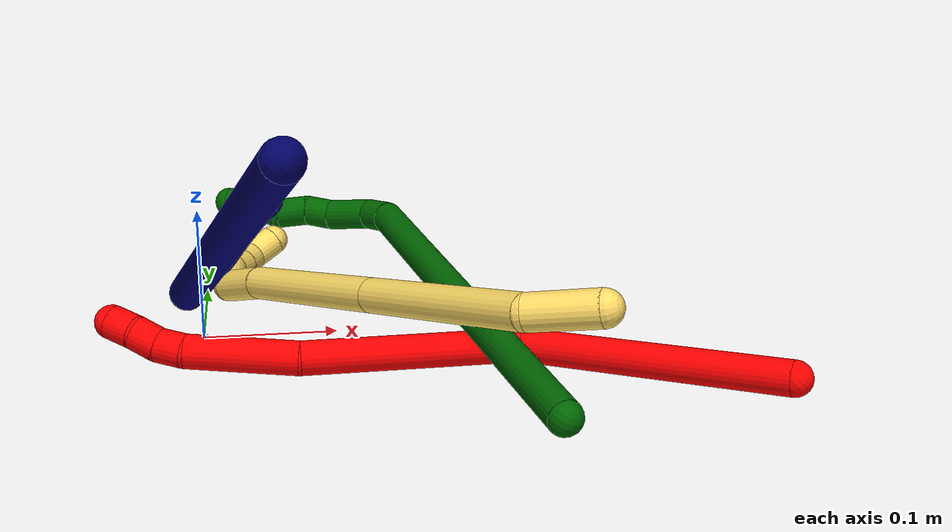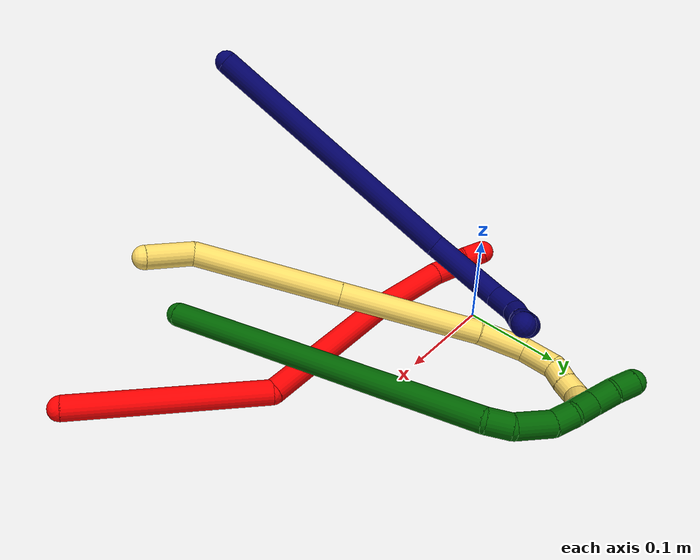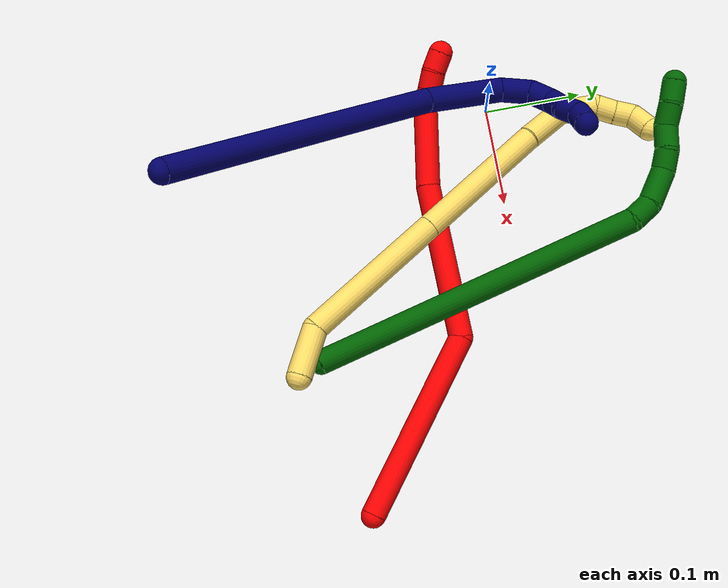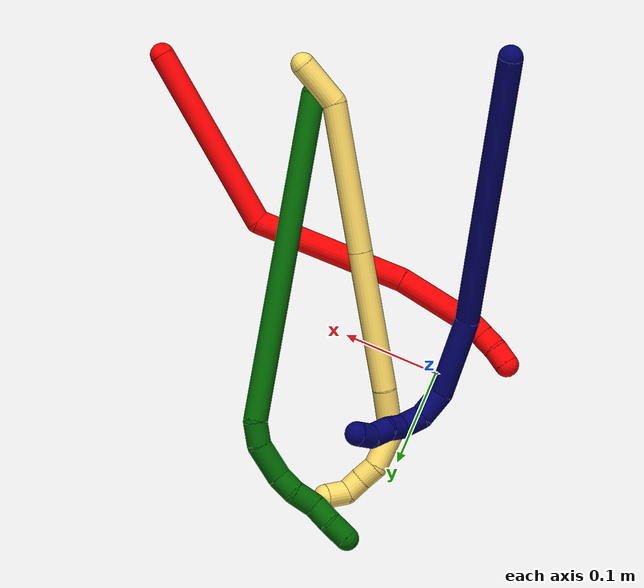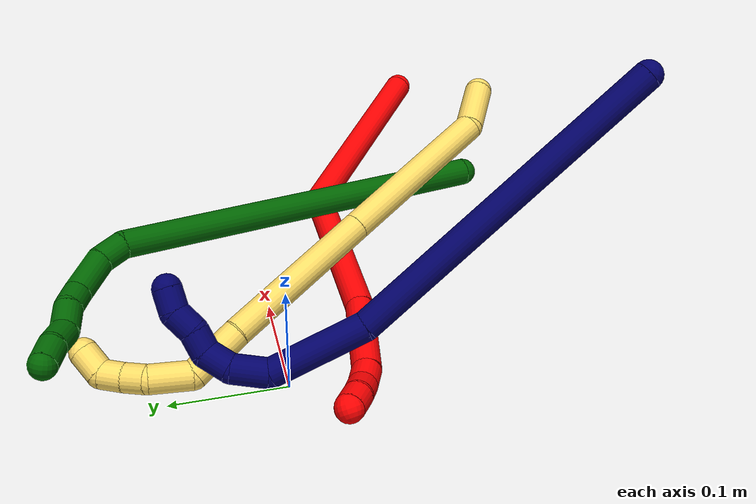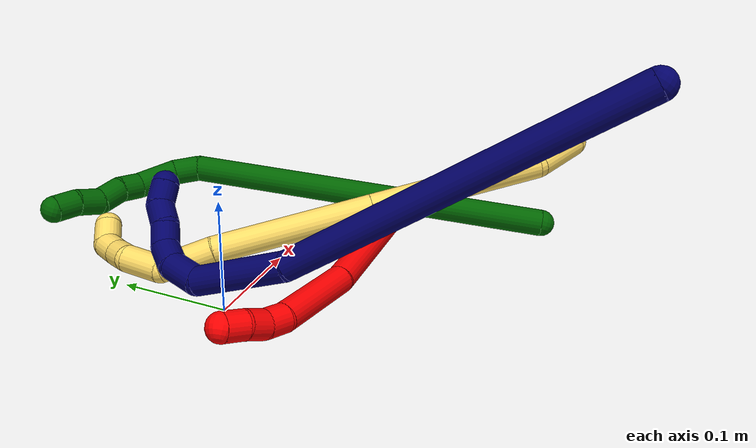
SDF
<sdf version="1.7">
 <world name="default">
  <model name="2">
   <static>0</static>
   <link name="2">
    <collision name="collision-cylinder-e_1_1_4">
     <pose>-0.052133 0.066903 -0.050646 -2.21877 -0.555923 1.04202</pose>
     <geometry><cylinder><radius>0.0125</radius><length>0.197574</length></cylinder></geometry>
     <surface>
      <friction><ode><mu>1.16</mu><mu2>1.16</mu2><slip1>0</slip1><slip2>0</slip2></ode></friction>
      <contact><ode><kp>1e+06</kp><kd>1</kd><max_vel>0</max_vel><min_depth>0.001</min_depth></ode></contact>
     </surface>
    </collision>
    <visual name="visual-cylinder-e_1_1_4">
     <pose>-0.052133 0.066903 -0.050646 -2.21877 -0.555923 1.04202</pose>
     <geometry><cylinder><radius>0.0125</radius><length>0.197574</length></cylinder></geometry>
     <material><ambient>1 0 0 1</ambient></material>
    </visual>
    <collision name="collision-cylinder-e_2_4_5">
     <pose>-0.16142 0.139701 -0.157232 -3.03659 -0.793383 2.89199</pose>
     <geometry><cylinder><radius>0.0125</radius><length>0.160382</length></cylinder></geometry>
     <surface>
      <friction><ode><mu>1.16</mu><mu2>1.16</mu2><slip1>0</slip1><slip2>0</slip2></ode></friction>
      <contact><ode><kp>1e+06</kp><kd>1</kd><max_vel>0</max_vel><min_depth>0.001</min_depth></ode></contact>
     </surface>
    </collision>
    <visual name="visual-cylinder-e_2_4_5">
     <pose>-0.16142 0.139701 -0.157232 -3.03659 -0.793383 2.89199</pose>
     <geometry><cylinder><radius>0.0125</radius><length>0.160382</length></cylinder></geometry>
     <material><ambient>1 0 0 1</ambient></material>
    </visual>
    <collision name="collision-cylinder-e_3_5_6">
     <pose>-0.249213 0.155335 -0.23849 -2.77443 -0.846122 2.35934</pose>
     <geometry><cylinder><radius>0.0125</radius><length>0.081845</length></cylinder></geometry>
     <surface>
      <friction><ode><mu>1.16</mu><mu2>1.16</mu2><slip1>0</slip1><slip2>0</slip2></ode></friction>
      <contact><ode><kp>1e+06</kp><kd>1</kd><max_vel>0</max_vel><min_depth>0.001</min_depth></ode></contact>
     </surface>
    </collision>
    <visual name="visual-cylinder-e_3_5_6">
     <pose>-0.249213 0.155335 -0.23849 -2.77443 -0.846122 2.35934</pose>
     <geometry><cylinder><radius>0.0125</radius><length>0.081845</length></cylinder></geometry>
     <material><ambient>1 0 0 1</ambient></material>
    </visual>
    <collision name="collision-cylinder-e_4_6_7">
     <pose>-0.287447 0.169544 -0.268703 -2.40126 -0.85312 1.72812</pose>
     <geometry><cylinder><radius>0.0125</radius><length>0.020161</length></cylinder></geometry>
     <surface>
      <friction><ode><mu>1.16</mu><mu2>1.16</mu2><slip1>0</slip1><slip2>0</slip2></ode></friction>
      <contact><ode><kp>1e+06</kp><kd>1</kd><max_vel>0</max_vel><min_depth>0.001</min_depth></ode></contact>
     </surface>
    </collision>
    <visual name="visual-cylinder-e_4_6_7">
     <pose>-0.287447 0.169544 -0.268703 -2.40126 -0.85312 1.72812</pose>
     <geometry><cylinder><radius>0.0125</radius><length>0.020161</length></cylinder></geometry>
     <material><ambient>1 0 0 1</ambient></material>
    </visual>
    <collision name="collision-cylinder-e_5_7_8">
     <pose>-0.303895 0.17798 -0.27608 -2.1304 -1.08482 1.6557</pose>
     <geometry><cylinder><radius>0.0125</radius><length>0.020028</length></cylinder></geometry>
     <surface>
      <friction><ode><mu>1.16</mu><mu2>1.16</mu2><slip1>0</slip1><slip2>0</slip2></ode></friction>
      <contact><ode><kp>1e+06</kp><kd>1</kd><max_vel>0</max_vel><min_depth>0.001</min_depth></ode></contact>
     </surface>
    </collision>
    <visual name="visual-cylinder-e_5_7_8">
     <pose>-0.303895 0.17798 -0.27608 -2.1304 -1.08482 1.6557</pose>
     <geometry><cylinder><radius>0.0125</radius><length>0.020028</length></cylinder></geometry>
     <material><ambient>1 0 0 1</ambient></material>
    </visual>
    <collision name="collision-cylinder-e_6_8_2">
     <pose>-0.320412 0.187499 -0.281807 -2.09918 -0.872415 1.36389</pose>
     <geometry><cylinder><radius>0.0125</radius><length>0.020011</length></cylinder></geometry>
     <surface>
      <friction><ode><mu>1.16</mu><mu2>1.16</mu2><slip1>0</slip1><slip2>0</slip2></ode></friction>
      <contact><ode><kp>1e+06</kp><kd>1</kd><max_vel>0</max_vel><min_depth>0.001</min_depth></ode></contact>
     </surface>
    </collision>
    <visual name="visual-cylinder-e_6_8_2">
     <pose>-0.320412 0.187499 -0.281807 -2.09918 -0.872415 1.36389</pose>
     <geometry><cylinder><radius>0.0125</radius><length>0.020011</length></cylinder></geometry>
     <material><ambient>1 0 0 1</ambient></material>
    </visual>
    <collision name="collision-sphere-2">
     <pose>-0.328075 0.193055 -0.28505 0 -0 0</pose>
     <geometry><sphere><radius>0.0125</radius></sphere></geometry>
     <surface>
      <friction><ode><mu>1.16</mu><mu2>1.16</mu2><slip1>0</slip1><slip2>0</slip2></ode></friction>
      <contact><ode><kp>1e+06</kp><kd>1</kd><max_vel>0</max_vel><min_depth>0.001</min_depth></ode></contact>
     </surface>
    </collision>
    <visual name="visual-sphere-2">
     <pose>-0.328075 0.193055 -0.28505 0 -0 0</pose>
     <geometry><sphere><radius>0.0125</radius></sphere></geometry>
     <material><ambient>1 0 0 1</ambient></material>
    </visual>
    <collision name="collision-sphere-4">
     <pose>-0.104265 0.133806 -0.101293 0 -0 0</pose>
     <geometry><sphere><radius>0.0125</radius></sphere></geometry>
     <surface>
      <friction><ode><mu>1.16</mu><mu2>1.16</mu2><slip1>0</slip1><slip2>0</slip2></ode></friction>
      <contact><ode><kp>1e+06</kp><kd>1</kd><max_vel>0</max_vel><min_depth>0.001</min_depth></ode></contact>
     </surface>
    </collision>
    <visual name="visual-sphere-4">
     <pose>-0.104265 0.133806 -0.101293 0 -0 0</pose>
     <geometry><sphere><radius>0.0125</radius></sphere></geometry>
     <material><ambient>1 0 0 1</ambient></material>
    </visual>
    <collision name="collision-sphere-1">
     <geometry><sphere><radius>0.0125</radius></sphere></geometry>
     <surface>
      <friction><ode><mu>1.16</mu><mu2>1.16</mu2><slip1>0</slip1><slip2>0</slip2></ode></friction>
      <contact><ode><kp>1e+06</kp><kd>1</kd><max_vel>0</max_vel><min_depth>0.001</min_depth></ode></contact>
     </surface>
    </collision>
    <visual name="visual-sphere-1">
     <geometry><sphere><radius>0.0125</radius></sphere></geometry>
     <material><ambient>1 0 0 1</ambient></material>
    </visual>
    <collision name="collision-sphere-8">
     <pose>-0.312749 0.181943 -0.278563 0 -0 0</pose>
     <geometry><sphere><radius>0.0125</radius></sphere></geometry>
     <surface>
      <friction><ode><mu>1.16</mu><mu2>1.16</mu2><slip1>0</slip1><slip2>0</slip2></ode></friction>
      <contact><ode><kp>1e+06</kp><kd>1</kd><max_vel>0</max_vel><min_depth>0.001</min_depth></ode></contact>
     </surface>
    </collision>
    <visual name="visual-sphere-8">
     <pose>-0.312749 0.181943 -0.278563 0 -0 0</pose>
     <geometry><sphere><radius>0.0125</radius></sphere></geometry>
     <material><ambient>1 0 0 1</ambient></material>
    </visual>
    <collision name="collision-sphere-5">
     <pose>-0.218574 0.145597 -0.213171 0 -0 0</pose>
     <geometry><sphere><radius>0.0125</radius></sphere></geometry>
     <surface>
      <friction><ode><mu>1.16</mu><mu2>1.16</mu2><slip1>0</slip1><slip2>0</slip2></ode></friction>
      <contact><ode><kp>1e+06</kp><kd>1</kd><max_vel>0</max_vel><min_depth>0.001</min_depth></ode></contact>
     </surface>
    </collision>
    <visual name="visual-sphere-5">
     <pose>-0.218574 0.145597 -0.213171 0 -0 0</pose>
     <geometry><sphere><radius>0.0125</radius></sphere></geometry>
     <material><ambient>1 0 0 1</ambient></material>
    </visual>
    <collision name="collision-sphere-6">
     <pose>-0.279853 0.165073 -0.263809 0 -0 0</pose>
     <geometry><sphere><radius>0.0125</radius></sphere></geometry>
     <surface>
      <friction><ode><mu>1.16</mu><mu2>1.16</mu2><slip1>0</slip1><slip2>0</slip2></ode></friction>
      <contact><ode><kp>1e+06</kp><kd>1</kd><max_vel>0</max_vel><min_depth>0.001</min_depth></ode></contact>
     </surface>
    </collision>
    <visual name="visual-sphere-6">
     <pose>-0.279853 0.165073 -0.263809 0 -0 0</pose>
     <geometry><sphere><radius>0.0125</radius></sphere></geometry>
     <material><ambient>1 0 0 1</ambient></material>
    </visual>
    <collision name="collision-sphere-7">
     <pose>-0.295041 0.174016 -0.273597 0 -0 0</pose>
     <geometry><sphere><radius>0.0125</radius></sphere></geometry>
     <surface>
      <friction><ode><mu>1.16</mu><mu2>1.16</mu2><slip1>0</slip1><slip2>0</slip2></ode></friction>
      <contact><ode><kp>1e+06</kp><kd>1</kd><max_vel>0</max_vel><min_depth>0.001</min_depth></ode></contact>
     </surface>
    </collision>
    <visual name="visual-sphere-7">
     <pose>-0.295041 0.174016 -0.273597 0 -0 0</pose>
     <geometry><sphere><radius>0.0125</radius></sphere></geometry>
     <material><ambient>1 0 0 1</ambient></material>
    </visual>
    <inertial>
     <pose>-0.149758 0.118144 -0.142657 0 -0 0</pose>
     <mass>0.5</mass>
     <inertia>
      <ixx>0.000555</ixx>
      <ixy>0</ixy>
      <ixz>0</ixz>
      <iyy>0.001005</iyy>
      <iyz>0</iyz>
      <izz>0.000131</izz>
     </inertia>
    </inertial>
   </link>
   <pose>0.386921 -0.190877 0.029206 -0.208768 0.774657 -0.054898</pose>
  </model>
  <model name="5">
   <static>0</static>
   <link name="5">
    <collision name="collision-cylinder-e_1_1_4">
     <pose>-0.000514 -0.001544 -0.024732 3.07925 -0.020738 -0.642125</pose>
     <geometry><cylinder><radius>0.0125</radius><length>0.049571</length></cylinder></geometry>
     <surface>
      <friction><ode><mu>1.16</mu><mu2>1.16</mu2><slip1>0</slip1><slip2>0</slip2></ode></friction>
      <contact><ode><kp>1e+06</kp><kd>1</kd><max_vel>0</max_vel><min_depth>0.001</min_depth></ode></contact>
     </surface>
    </collision>
    <visual name="visual-cylinder-e_1_1_4">
     <pose>-0.000514 -0.001544 -0.024732 3.07925 -0.020738 -0.642125</pose>
     <geometry><cylinder><radius>0.0125</radius><length>0.049571</length></cylinder></geometry>
     <material><ambient>1 0.858824 0.4 1</ambient></material>
    </visual>
    <collision name="collision-cylinder-e_2_4_5">
     <pose>-0.029815 0.019049 -0.11746 -2.82685 -0.382713 1.76904</pose>
     <geometry><cylinder><radius>0.0125</radius><length>0.154171</length></cylinder></geometry>
     <surface>
      <friction><ode><mu>1.16</mu><mu2>1.16</mu2><slip1>0</slip1><slip2>0</slip2></ode></friction>
      <contact><ode><kp>1e+06</kp><kd>1</kd><max_vel>0</max_vel><min_depth>0.001</min_depth></ode></contact>
     </surface>
    </collision>
    <visual name="visual-cylinder-e_2_4_5">
     <pose>-0.029815 0.019049 -0.11746 -2.82685 -0.382713 1.76904</pose>
     <geometry><cylinder><radius>0.0125</radius><length>0.154171</length></cylinder></geometry>
     <material><ambient>1 0.858824 0.4 1</ambient></material>
    </visual>
    <collision name="collision-cylinder-e_3_5_6">
     <pose>-0.08567 0.061965 -0.249764 -2.82906 -0.380969 1.77144</pose>
     <geometry><cylinder><radius>0.0125</radius><length>0.145603</length></cylinder></geometry>
     <surface>
      <friction><ode><mu>1.16</mu><mu2>1.16</mu2><slip1>0</slip1><slip2>0</slip2></ode></friction>
      <contact><ode><kp>1e+06</kp><kd>1</kd><max_vel>0</max_vel><min_depth>0.001</min_depth></ode></contact>
     </surface>
    </collision>
    <visual name="visual-cylinder-e_3_5_6">
     <pose>-0.08567 0.061965 -0.249764 -2.82906 -0.380969 1.77144</pose>
     <geometry><cylinder><radius>0.0125</radius><length>0.145603</length></cylinder></geometry>
     <material><ambient>1 0.858824 0.4 1</ambient></material>
    </visual>
    <collision name="collision-cylinder-e_4_6_7">
     <pose>-0.120349 0.092228 -0.335802 -2.73012 -0.310576 1.2872</pose>
     <geometry><cylinder><radius>0.0125</radius><length>0.0498</length></cylinder></geometry>
     <surface>
      <friction><ode><mu>1.16</mu><mu2>1.16</mu2><slip1>0</slip1><slip2>0</slip2></ode></friction>
      <contact><ode><kp>1e+06</kp><kd>1</kd><max_vel>0</max_vel><min_depth>0.001</min_depth></ode></contact>
     </surface>
    </collision>
    <visual name="visual-cylinder-e_4_6_7">
     <pose>-0.120349 0.092228 -0.335802 -2.73012 -0.310576 1.2872</pose>
     <geometry><cylinder><radius>0.0125</radius><length>0.0498</length></cylinder></geometry>
     <material><ambient>1 0.858824 0.4 1</ambient></material>
    </visual>
    <collision name="collision-cylinder-e_5_7_8">
     <pose>-0.142784 0.109715 -0.365087 -2.32729 -0.932162 1.72419</pose>
     <geometry><cylinder><radius>0.0125</radius><length>0.03693</length></cylinder></geometry>
     <surface>
      <friction><ode><mu>1.16</mu><mu2>1.16</mu2><slip1>0</slip1><slip2>0</slip2></ode></friction>
      <contact><ode><kp>1e+06</kp><kd>1</kd><max_vel>0</max_vel><min_depth>0.001</min_depth></ode></contact>
     </surface>
    </collision>
    <visual name="visual-cylinder-e_5_7_8">
     <pose>-0.142784 0.109715 -0.365087 -2.32729 -0.932162 1.72419</pose>
     <geometry><cylinder><radius>0.0125</radius><length>0.03693</length></cylinder></geometry>
     <material><ambient>1 0.858824 0.4 1</ambient></material>
    </visual>
    <collision name="collision-cylinder-e_6_8_9">
     <pose>-0.16471 0.124762 -0.373221 -1.65289 -0.787741 0.847677</pose>
     <geometry><cylinder><radius>0.0125</radius><length>0.020035</length></cylinder></geometry>
     <surface>
      <friction><ode><mu>1.16</mu><mu2>1.16</mu2><slip1>0</slip1><slip2>0</slip2></ode></friction>
      <contact><ode><kp>1e+06</kp><kd>1</kd><max_vel>0</max_vel><min_depth>0.001</min_depth></ode></contact>
     </surface>
    </collision>
    <visual name="visual-cylinder-e_6_8_9">
     <pose>-0.16471 0.124762 -0.373221 -1.65289 -0.787741 0.847677</pose>
     <geometry><cylinder><radius>0.0125</radius><length>0.020035</length></cylinder></geometry>
     <material><ambient>1 0.858824 0.4 1</ambient></material>
    </visual>
    <collision name="collision-cylinder-e_7_9_10">
     <pose>-0.179941 0.137726 -0.374465 -1.68253 -0.938508 1.03175</pose>
     <geometry><cylinder><radius>0.0125</radius><length>0.020161</length></cylinder></geometry>
     <surface>
      <friction><ode><mu>1.16</mu><mu2>1.16</mu2><slip1>0</slip1><slip2>0</slip2></ode></friction>
      <contact><ode><kp>1e+06</kp><kd>1</kd><max_vel>0</max_vel><min_depth>0.001</min_depth></ode></contact>
     </surface>
    </collision>
    <visual name="visual-cylinder-e_7_9_10">
     <pose>-0.179941 0.137726 -0.374465 -1.68253 -0.938508 1.03175</pose>
     <geometry><cylinder><radius>0.0125</radius><length>0.020161</length></cylinder></geometry>
     <material><ambient>1 0.858824 0.4 1</ambient></material>
    </visual>
    <collision name="collision-cylinder-e_8_10_2">
     <pose>-0.197575 0.146941 -0.368834 -0.482246 -0.928708 0.245107</pose>
     <geometry><cylinder><radius>0.0125</radius><length>0.02373</length></cylinder></geometry>
     <surface>
      <friction><ode><mu>1.16</mu><mu2>1.16</mu2><slip1>0</slip1><slip2>0</slip2></ode></friction>
      <contact><ode><kp>1e+06</kp><kd>1</kd><max_vel>0</max_vel><min_depth>0.001</min_depth></ode></contact>
     </surface>
    </collision>
    <visual name="visual-cylinder-e_8_10_2">
     <pose>-0.197575 0.146941 -0.368834 -0.482246 -0.928708 0.245107</pose>
     <geometry><cylinder><radius>0.0125</radius><length>0.02373</length></cylinder></geometry>
     <material><ambient>1 0.858824 0.4 1</ambient></material>
    </visual>
    <collision name="collision-sphere-2">
     <pose>-0.207077 0.150237 -0.362539 0 -0 0</pose>
     <geometry><sphere><radius>0.0125</radius></sphere></geometry>
     <surface>
      <friction><ode><mu>1.16</mu><mu2>1.16</mu2><slip1>0</slip1><slip2>0</slip2></ode></friction>
      <contact><ode><kp>1e+06</kp><kd>1</kd><max_vel>0</max_vel><min_depth>0.001</min_depth></ode></contact>
     </surface>
    </collision>
    <visual name="visual-sphere-2">
     <pose>-0.207077 0.150237 -0.362539 0 -0 0</pose>
     <geometry><sphere><radius>0.0125</radius></sphere></geometry>
     <material><ambient>1 0.858824 0.4 1</ambient></material>
    </visual>
    <collision name="collision-sphere-10">
     <pose>-0.188073 0.143646 -0.375129 0 -0 0</pose>
     <geometry><sphere><radius>0.0125</radius></sphere></geometry>
     <surface>
      <friction><ode><mu>1.16</mu><mu2>1.16</mu2><slip1>0</slip1><slip2>0</slip2></ode></friction>
      <contact><ode><kp>1e+06</kp><kd>1</kd><max_vel>0</max_vel><min_depth>0.001</min_depth></ode></contact>
     </surface>
    </collision>
    <visual name="visual-sphere-10">
     <pose>-0.188073 0.143646 -0.375129 0 -0 0</pose>
     <geometry><sphere><radius>0.0125</radius></sphere></geometry>
     <material><ambient>1 0.858824 0.4 1</ambient></material>
    </visual>
    <collision name="collision-sphere-9">
     <pose>-0.17181 0.131805 -0.373801 0 -0 0</pose>
     <geometry><sphere><radius>0.0125</radius></sphere></geometry>
     <surface>
      <friction><ode><mu>1.16</mu><mu2>1.16</mu2><slip1>0</slip1><slip2>0</slip2></ode></friction>
      <contact><ode><kp>1e+06</kp><kd>1</kd><max_vel>0</max_vel><min_depth>0.001</min_depth></ode></contact>
     </surface>
    </collision>
    <visual name="visual-sphere-9">
     <pose>-0.17181 0.131805 -0.373801 0 -0 0</pose>
     <geometry><sphere><radius>0.0125</radius></sphere></geometry>
     <material><ambient>1 0.858824 0.4 1</ambient></material>
    </visual>
    <collision name="collision-sphere-4">
     <pose>-0.001028 -0.003088 -0.049464 0 -0 0</pose>
     <geometry><sphere><radius>0.0125</radius></sphere></geometry>
     <surface>
      <friction><ode><mu>1.16</mu><mu2>1.16</mu2><slip1>0</slip1><slip2>0</slip2></ode></friction>
      <contact><ode><kp>1e+06</kp><kd>1</kd><max_vel>0</max_vel><min_depth>0.001</min_depth></ode></contact>
     </surface>
    </collision>
    <visual name="visual-sphere-4">
     <pose>-0.001028 -0.003088 -0.049464 0 -0 0</pose>
     <geometry><sphere><radius>0.0125</radius></sphere></geometry>
     <material><ambient>1 0.858824 0.4 1</ambient></material>
    </visual>
    <collision name="collision-sphere-1">
     <geometry><sphere><radius>0.0125</radius></sphere></geometry>
     <surface>
      <friction><ode><mu>1.16</mu><mu2>1.16</mu2><slip1>0</slip1><slip2>0</slip2></ode></friction>
      <contact><ode><kp>1e+06</kp><kd>1</kd><max_vel>0</max_vel><min_depth>0.001</min_depth></ode></contact>
     </surface>
    </collision>
    <visual name="visual-sphere-1">
     <geometry><sphere><radius>0.0125</radius></sphere></geometry>
     <material><ambient>1 0.858824 0.4 1</ambient></material>
    </visual>
    <collision name="collision-sphere-8">
     <pose>-0.15761 0.117719 -0.372642 0 -0 0</pose>
     <geometry><sphere><radius>0.0125</radius></sphere></geometry>
     <surface>
      <friction><ode><mu>1.16</mu><mu2>1.16</mu2><slip1>0</slip1><slip2>0</slip2></ode></friction>
      <contact><ode><kp>1e+06</kp><kd>1</kd><max_vel>0</max_vel><min_depth>0.001</min_depth></ode></contact>
     </surface>
    </collision>
    <visual name="visual-sphere-8">
     <pose>-0.15761 0.117719 -0.372642 0 -0 0</pose>
     <geometry><sphere><radius>0.0125</radius></sphere></geometry>
     <material><ambient>1 0.858824 0.4 1</ambient></material>
    </visual>
    <collision name="collision-sphere-5">
     <pose>-0.058601 0.041186 -0.185456 0 -0 0</pose>
     <geometry><sphere><radius>0.0125</radius></sphere></geometry>
     <surface>
      <friction><ode><mu>1.16</mu><mu2>1.16</mu2><slip1>0</slip1><slip2>0</slip2></ode></friction>
      <contact><ode><kp>1e+06</kp><kd>1</kd><max_vel>0</max_vel><min_depth>0.001</min_depth></ode></contact>
     </surface>
    </collision>
    <visual name="visual-sphere-5">
     <pose>-0.058601 0.041186 -0.185456 0 -0 0</pose>
     <geometry><sphere><radius>0.0125</radius></sphere></geometry>
     <material><ambient>1 0.858824 0.4 1</ambient></material>
    </visual>
    <collision name="collision-sphere-6">
     <pose>-0.112739 0.082745 -0.314072 0 -0 0</pose>
     <geometry><sphere><radius>0.0125</radius></sphere></geometry>
     <surface>
      <friction><ode><mu>1.16</mu><mu2>1.16</mu2><slip1>0</slip1><slip2>0</slip2></ode></friction>
      <contact><ode><kp>1e+06</kp><kd>1</kd><max_vel>0</max_vel><min_depth>0.001</min_depth></ode></contact>
     </surface>
    </collision>
    <visual name="visual-sphere-6">
     <pose>-0.112739 0.082745 -0.314072 0 -0 0</pose>
     <geometry><sphere><radius>0.0125</radius></sphere></geometry>
     <material><ambient>1 0.858824 0.4 1</ambient></material>
    </visual>
    <collision name="collision-sphere-7">
     <pose>-0.127959 0.10171 -0.357532 0 -0 0</pose>
     <geometry><sphere><radius>0.0125</radius></sphere></geometry>
     <surface>
      <friction><ode><mu>1.16</mu><mu2>1.16</mu2><slip1>0</slip1><slip2>0</slip2></ode></friction>
      <contact><ode><kp>1e+06</kp><kd>1</kd><max_vel>0</max_vel><min_depth>0.001</min_depth></ode></contact>
     </surface>
    </collision>
    <visual name="visual-sphere-7">
     <pose>-0.127959 0.10171 -0.357532 0 -0 0</pose>
     <geometry><sphere><radius>0.0125</radius></sphere></geometry>
     <material><ambient>1 0.858824 0.4 1</ambient></material>
    </visual>
    <inertial>
     <pose>-0.079957 0.058581 -0.219372 0 -0 0</pose>
     <mass>0.5</mass>
     <inertia>
      <ixx>0.000424</ixx>
      <ixy>0</ixy>
      <ixz>0</ixz>
      <iyy>0.000712</iyy>
      <iyz>0</iyz>
      <izz>2.5e-05</izz>
     </inertia>
    </inertial>
   </link>
   <pose>0.246221 -0.231753 0.102136 -1.25895 0.638086 -1.87215</pose>
  </model>
  <model name="6">
   <static>0</static>
   <link name="6">
    <collision name="collision-cylinder-e_1_1_4">
     <pose>-0.129051 0.105737 -0.037953 -1.91541 -0.854506 1.14877</pose>
     <geometry><cylinder><radius>0.0125</radius><length>0.342197</length></cylinder></geometry>
     <surface>
      <friction><ode><mu>1.16</mu><mu2>1.16</mu2><slip1>0</slip1><slip2>0</slip2></ode></friction>
      <contact><ode><kp>1e+06</kp><kd>1</kd><max_vel>0</max_vel><min_depth>0.001</min_depth></ode></contact>
     </surface>
    </collision>
    <visual name="visual-cylinder-e_1_1_4">
     <pose>-0.129051 0.105737 -0.037953 -1.91541 -0.854506 1.14877</pose>
     <geometry><cylinder><radius>0.0125</radius><length>0.342197</length></cylinder></geometry>
     <material><ambient>0 0.392157 0.003922 1</ambient></material>
    </visual>
    <collision name="collision-cylinder-e_2_4_5">
     <pose>-0.267994 0.215678 -0.082001 -2.53766 -0.928266 2.02838</pose>
     <geometry><cylinder><radius>0.0125</radius><length>0.024715</length></cylinder></geometry>
     <surface>
      <friction><ode><mu>1.16</mu><mu2>1.16</mu2><slip1>0</slip1><slip2>0</slip2></ode></friction>
      <contact><ode><kp>1e+06</kp><kd>1</kd><max_vel>0</max_vel><min_depth>0.001</min_depth></ode></contact>
     </surface>
    </collision>
    <visual name="visual-cylinder-e_2_4_5">
     <pose>-0.267994 0.215678 -0.082001 -2.53766 -0.928266 2.02838</pose>
     <geometry><cylinder><radius>0.0125</radius><length>0.024715</length></cylinder></geometry>
     <material><ambient>0 0.392157 0.003922 1</ambient></material>
    </visual>
    <collision name="collision-cylinder-e_3_5_6">
     <pose>-0.293996 0.218876 -0.098894 3.04859 -0.978284 -2.96719</pose>
     <geometry><cylinder><radius>0.0125</radius><length>0.038837</length></cylinder></geometry>
     <surface>
      <friction><ode><mu>1.16</mu><mu2>1.16</mu2><slip1>0</slip1><slip2>0</slip2></ode></friction>
      <contact><ode><kp>1e+06</kp><kd>1</kd><max_vel>0</max_vel><min_depth>0.001</min_depth></ode></contact>
     </surface>
    </collision>
    <visual name="visual-cylinder-e_3_5_6">
     <pose>-0.293996 0.218876 -0.098894 3.04859 -0.978284 -2.96719</pose>
     <geometry><cylinder><radius>0.0125</radius><length>0.038837</length></cylinder></geometry>
     <material><ambient>0 0.392157 0.003922 1</ambient></material>
    </visual>
    <collision name="collision-cylinder-e_4_6_7">
     <pose>-0.320085 0.214813 -0.113134 2.41561 -1.13864 -2.0704</pose>
     <geometry><cylinder><radius>0.0125</radius><length>0.021981</length></cylinder></geometry>
     <surface>
      <friction><ode><mu>1.16</mu><mu2>1.16</mu2><slip1>0</slip1><slip2>0</slip2></ode></friction>
      <contact><ode><kp>1e+06</kp><kd>1</kd><max_vel>0</max_vel><min_depth>0.001</min_depth></ode></contact>
     </surface>
    </collision>
    <visual name="visual-cylinder-e_4_6_7">
     <pose>-0.320085 0.214813 -0.113134 2.41561 -1.13864 -2.0704</pose>
     <geometry><cylinder><radius>0.0125</radius><length>0.021981</length></cylinder></geometry>
     <material><ambient>0 0.392157 0.003922 1</ambient></material>
    </visual>
    <collision name="collision-cylinder-e_5_7_8">
     <pose>-0.339454 0.206018 -0.122957 2.40906 -0.830191 -1.70919</pose>
     <geometry><cylinder><radius>0.0125</radius><length>0.025441</length></cylinder></geometry>
     <surface>
      <friction><ode><mu>1.16</mu><mu2>1.16</mu2><slip1>0</slip1><slip2>0</slip2></ode></friction>
      <contact><ode><kp>1e+06</kp><kd>1</kd><max_vel>0</max_vel><min_depth>0.001</min_depth></ode></contact>
     </surface>
    </collision>
    <visual name="visual-cylinder-e_5_7_8">
     <pose>-0.339454 0.206018 -0.122957 2.40906 -0.830191 -1.70919</pose>
     <geometry><cylinder><radius>0.0125</radius><length>0.025441</length></cylinder></geometry>
     <material><ambient>0 0.392157 0.003922 1</ambient></material>
    </visual>
    <collision name="collision-cylinder-e_6_8_9">
     <pose>-0.360306 0.197195 -0.131389 2.15768 -1.25839 -1.87231</pose>
     <geometry><cylinder><radius>0.0125</radius><length>0.024093</length></cylinder></geometry>
     <surface>
      <friction><ode><mu>1.16</mu><mu2>1.16</mu2><slip1>0</slip1><slip2>0</slip2></ode></friction>
      <contact><ode><kp>1e+06</kp><kd>1</kd><max_vel>0</max_vel><min_depth>0.001</min_depth></ode></contact>
     </surface>
    </collision>
    <visual name="visual-cylinder-e_6_8_9">
     <pose>-0.360306 0.197195 -0.131389 2.15768 -1.25839 -1.87231</pose>
     <geometry><cylinder><radius>0.0125</radius><length>0.024093</length></cylinder></geometry>
     <material><ambient>0 0.392157 0.003922 1</ambient></material>
    </visual>
    <collision name="collision-cylinder-e_7_9_2">
     <pose>-0.381695 0.190724 -0.137823 2.48365 -1.06168 -2.08816</pose>
     <geometry><cylinder><radius>0.0125</radius><length>0.022735</length></cylinder></geometry>
     <surface>
      <friction><ode><mu>1.16</mu><mu2>1.16</mu2><slip1>0</slip1><slip2>0</slip2></ode></friction>
      <contact><ode><kp>1e+06</kp><kd>1</kd><max_vel>0</max_vel><min_depth>0.001</min_depth></ode></contact>
     </surface>
    </collision>
    <visual name="visual-cylinder-e_7_9_2">
     <pose>-0.381695 0.190724 -0.137823 2.48365 -1.06168 -2.08816</pose>
     <geometry><cylinder><radius>0.0125</radius><length>0.022735</length></cylinder></geometry>
     <material><ambient>0 0.392157 0.003922 1</ambient></material>
    </visual>
    <collision name="collision-sphere-2">
     <pose>-0.391621 0.187336 -0.142207 0 -0 0</pose>
     <geometry><sphere><radius>0.0125</radius></sphere></geometry>
     <surface>
      <friction><ode><mu>1.16</mu><mu2>1.16</mu2><slip1>0</slip1><slip2>0</slip2></ode></friction>
      <contact><ode><kp>1e+06</kp><kd>1</kd><max_vel>0</max_vel><min_depth>0.001</min_depth></ode></contact>
     </surface>
    </collision>
    <visual name="visual-sphere-2">
     <pose>-0.391621 0.187336 -0.142207 0 -0 0</pose>
     <geometry><sphere><radius>0.0125</radius></sphere></geometry>
     <material><ambient>0 0.392157 0.003922 1</ambient></material>
    </visual>
    <collision name="collision-sphere-9">
     <pose>-0.371769 0.194112 -0.133439 0 -0 0</pose>
     <geometry><sphere><radius>0.0125</radius></sphere></geometry>
     <surface>
      <friction><ode><mu>1.16</mu><mu2>1.16</mu2><slip1>0</slip1><slip2>0</slip2></ode></friction>
      <contact><ode><kp>1e+06</kp><kd>1</kd><max_vel>0</max_vel><min_depth>0.001</min_depth></ode></contact>
     </surface>
    </collision>
    <visual name="visual-sphere-9">
     <pose>-0.371769 0.194112 -0.133439 0 -0 0</pose>
     <geometry><sphere><radius>0.0125</radius></sphere></geometry>
     <material><ambient>0 0.392157 0.003922 1</ambient></material>
    </visual>
    <collision name="collision-sphere-4">
     <pose>-0.258101 0.211473 -0.075906 0 -0 0</pose>
     <geometry><sphere><radius>0.0125</radius></sphere></geometry>
     <surface>
      <friction><ode><mu>1.16</mu><mu2>1.16</mu2><slip1>0</slip1><slip2>0</slip2></ode></friction>
      <contact><ode><kp>1e+06</kp><kd>1</kd><max_vel>0</max_vel><min_depth>0.001</min_depth></ode></contact>
     </surface>
    </collision>
    <visual name="visual-sphere-4">
     <pose>-0.258101 0.211473 -0.075906 0 -0 0</pose>
     <geometry><sphere><radius>0.0125</radius></sphere></geometry>
     <material><ambient>0 0.392157 0.003922 1</ambient></material>
    </visual>
    <collision name="collision-sphere-1">
     <geometry><sphere><radius>0.0125</radius></sphere></geometry>
     <surface>
      <friction><ode><mu>1.16</mu><mu2>1.16</mu2><slip1>0</slip1><slip2>0</slip2></ode></friction>
      <contact><ode><kp>1e+06</kp><kd>1</kd><max_vel>0</max_vel><min_depth>0.001</min_depth></ode></contact>
     </surface>
    </collision>
    <visual name="visual-sphere-1">
     <geometry><sphere><radius>0.0125</radius></sphere></geometry>
     <material><ambient>0 0.392157 0.003922 1</ambient></material>
    </visual>
    <collision name="collision-sphere-8">
     <pose>-0.348842 0.200278 -0.129339 0 -0 0</pose>
     <geometry><sphere><radius>0.0125</radius></sphere></geometry>
     <surface>
      <friction><ode><mu>1.16</mu><mu2>1.16</mu2><slip1>0</slip1><slip2>0</slip2></ode></friction>
      <contact><ode><kp>1e+06</kp><kd>1</kd><max_vel>0</max_vel><min_depth>0.001</min_depth></ode></contact>
     </surface>
    </collision>
    <visual name="visual-sphere-8">
     <pose>-0.348842 0.200278 -0.129339 0 -0 0</pose>
     <geometry><sphere><radius>0.0125</radius></sphere></geometry>
     <material><ambient>0 0.392157 0.003922 1</ambient></material>
    </visual>
    <collision name="collision-sphere-5">
     <pose>-0.277888 0.219884 -0.088096 0 -0 0</pose>
     <geometry><sphere><radius>0.0125</radius></sphere></geometry>
     <surface>
      <friction><ode><mu>1.16</mu><mu2>1.16</mu2><slip1>0</slip1><slip2>0</slip2></ode></friction>
      <contact><ode><kp>1e+06</kp><kd>1</kd><max_vel>0</max_vel><min_depth>0.001</min_depth></ode></contact>
     </surface>
    </collision>
    <visual name="visual-sphere-5">
     <pose>-0.277888 0.219884 -0.088096 0 -0 0</pose>
     <geometry><sphere><radius>0.0125</radius></sphere></geometry>
     <material><ambient>0 0.392157 0.003922 1</ambient></material>
    </visual>
    <collision name="collision-sphere-6">
     <pose>-0.310105 0.217869 -0.109691 0 -0 0</pose>
     <geometry><sphere><radius>0.0125</radius></sphere></geometry>
     <surface>
      <friction><ode><mu>1.16</mu><mu2>1.16</mu2><slip1>0</slip1><slip2>0</slip2></ode></friction>
      <contact><ode><kp>1e+06</kp><kd>1</kd><max_vel>0</max_vel><min_depth>0.001</min_depth></ode></contact>
     </surface>
    </collision>
    <visual name="visual-sphere-6">
     <pose>-0.310105 0.217869 -0.109691 0 -0 0</pose>
     <geometry><sphere><radius>0.0125</radius></sphere></geometry>
     <material><ambient>0 0.392157 0.003922 1</ambient></material>
    </visual>
    <collision name="collision-sphere-7">
     <pose>-0.330065 0.211758 -0.116576 0 -0 0</pose>
     <geometry><sphere><radius>0.0125</radius></sphere></geometry>
     <surface>
      <friction><ode><mu>1.16</mu><mu2>1.16</mu2><slip1>0</slip1><slip2>0</slip2></ode></friction>
      <contact><ode><kp>1e+06</kp><kd>1</kd><max_vel>0</max_vel><min_depth>0.001</min_depth></ode></contact>
     </surface>
    </collision>
    <visual name="visual-sphere-7">
     <pose>-0.330065 0.211758 -0.116576 0 -0 0</pose>
     <geometry><sphere><radius>0.0125</radius></sphere></geometry>
     <material><ambient>0 0.392157 0.003922 1</ambient></material>
    </visual>
    <inertial>
     <pose>-0.190466 0.138128 -0.061538 0 -0 0</pose>
     <mass>0.5</mass>
     <inertia>
      <ixx>0.002871</ixx>
      <ixy>0</ixy>
      <ixz>0</ixz>
      <iyy>0.003742</iyy>
      <iyz>0</iyz>
      <izz>0.000462</izz>
     </inertia>
    </inertial>
   </link>
   <pose>0.228626 -0.21484 0.023373 -0.051092 0.428322 -0.687895</pose>
  </model>
  <model name="7">
   <static>0</static>
   <link name="7">
    <collision name="collision-cylinder-e_1_1_4">
     <pose>0.014572 0.081413 -0.124377 -2.56202 0.097717 -0.325078</pose>
     <geometry><cylinder><radius>0.0125</radius><length>0.298731</length></cylinder></geometry>
     <surface>
      <friction><ode><mu>1.16</mu><mu2>1.16</mu2><slip1>0</slip1><slip2>0</slip2></ode></friction>
      <contact><ode><kp>1e+06</kp><kd>1</kd><max_vel>0</max_vel><min_depth>0.001</min_depth></ode></contact>
     </surface>
    </collision>
    <visual name="visual-cylinder-e_1_1_4">
     <pose>0.014572 0.081413 -0.124377 -2.56202 0.097717 -0.325078</pose>
     <geometry><cylinder><radius>0.0125</radius><length>0.298731</length></cylinder></geometry>
     <material><ambient>0.003922 0 0.403922 1</ambient></material>
    </visual>
    <collision name="collision-cylinder-e_2_4_5">
     <pose>0.03394 0.19433 -0.27647 -2.29229 0.113781 -0.250588</pose>
     <geometry><cylinder><radius>0.0125</radius><length>0.084469</length></cylinder></geometry>
     <surface>
      <friction><ode><mu>1.16</mu><mu2>1.16</mu2><slip1>0</slip1><slip2>0</slip2></ode></friction>
      <contact><ode><kp>1e+06</kp><kd>1</kd><max_vel>0</max_vel><min_depth>0.001</min_depth></ode></contact>
     </surface>
    </collision>
    <visual name="visual-cylinder-e_2_4_5">
     <pose>0.03394 0.19433 -0.27647 -2.29229 0.113781 -0.250588</pose>
     <geometry><cylinder><radius>0.0125</radius><length>0.084469</length></cylinder></geometry>
     <material><ambient>0.003922 0 0.403922 1</ambient></material>
    </visual>
    <collision name="collision-cylinder-e_3_5_6">
     <pose>0.041104 0.24121 -0.306352 -1.7108 0.151432 -0.174162</pose>
     <geometry><cylinder><radius>0.0125</radius><length>0.031411</length></cylinder></geometry>
     <surface>
      <friction><ode><mu>1.16</mu><mu2>1.16</mu2><slip1>0</slip1><slip2>0</slip2></ode></friction>
      <contact><ode><kp>1e+06</kp><kd>1</kd><max_vel>0</max_vel><min_depth>0.001</min_depth></ode></contact>
     </surface>
    </collision>
    <visual name="visual-cylinder-e_3_5_6">
     <pose>0.041104 0.24121 -0.306352 -1.7108 0.151432 -0.174162</pose>
     <geometry><cylinder><radius>0.0125</radius><length>0.031411</length></cylinder></geometry>
     <material><ambient>0.003922 0 0.403922 1</ambient></material>
    </visual>
    <collision name="collision-cylinder-e_4_6_7">
     <pose>0.047433 0.267448 -0.305412 -1.29222 0.337063 -0.255213</pose>
     <geometry><cylinder><radius>0.0125</radius><length>0.023948</length></cylinder></geometry>
     <surface>
      <friction><ode><mu>1.16</mu><mu2>1.16</mu2><slip1>0</slip1><slip2>0</slip2></ode></friction>
      <contact><ode><kp>1e+06</kp><kd>1</kd><max_vel>0</max_vel><min_depth>0.001</min_depth></ode></contact>
     </surface>
    </collision>
    <visual name="visual-cylinder-e_4_6_7">
     <pose>0.047433 0.267448 -0.305412 -1.29222 0.337063 -0.255213</pose>
     <geometry><cylinder><radius>0.0125</radius><length>0.023948</length></cylinder></geometry>
     <material><ambient>0.003922 0 0.403922 1</ambient></material>
    </visual>
    <collision name="collision-cylinder-e_5_7_8">
     <pose>0.05214 0.285157 -0.294987 -0.752024 0.074346 -0.029363</pose>
     <geometry><cylinder><radius>0.0125</radius><length>0.020094</length></cylinder></geometry>
     <surface>
      <friction><ode><mu>1.16</mu><mu2>1.16</mu2><slip1>0</slip1><slip2>0</slip2></ode></friction>
      <contact><ode><kp>1e+06</kp><kd>1</kd><max_vel>0</max_vel><min_depth>0.001</min_depth></ode></contact>
     </surface>
    </collision>
    <visual name="visual-cylinder-e_5_7_8">
     <pose>0.05214 0.285157 -0.294987 -0.752024 0.074346 -0.029363</pose>
     <geometry><cylinder><radius>0.0125</radius><length>0.020094</length></cylinder></geometry>
     <material><ambient>0.003922 0 0.403922 1</ambient></material>
    </visual>
    <collision name="collision-cylinder-e_6_8_9">
     <pose>0.054451 0.301136 -0.282671 -1.07005 0.149208 -0.08854</pose>
     <geometry><cylinder><radius>0.0125</radius><length>0.02106</length></cylinder></geometry>
     <surface>
      <friction><ode><mu>1.16</mu><mu2>1.16</mu2><slip1>0</slip1><slip2>0</slip2></ode></friction>
      <contact><ode><kp>1e+06</kp><kd>1</kd><max_vel>0</max_vel><min_depth>0.001</min_depth></ode></contact>
     </surface>
    </collision>
    <visual name="visual-cylinder-e_6_8_9">
     <pose>0.054451 0.301136 -0.282671 -1.07005 0.149208 -0.08854</pose>
     <geometry><cylinder><radius>0.0125</radius><length>0.02106</length></cylinder></geometry>
     <material><ambient>0.003922 0 0.403922 1</ambient></material>
    </visual>
    <collision name="collision-cylinder-e_7_9_2">
     <pose>0.058056 0.315563 -0.269262 -0.561636 0.202419 -0.058569</pose>
     <geometry><cylinder><radius>0.0125</radius><length>0.020287</length></cylinder></geometry>
     <surface>
      <friction><ode><mu>1.16</mu><mu2>1.16</mu2><slip1>0</slip1><slip2>0</slip2></ode></friction>
      <contact><ode><kp>1e+06</kp><kd>1</kd><max_vel>0</max_vel><min_depth>0.001</min_depth></ode></contact>
     </surface>
    </collision>
    <visual name="visual-cylinder-e_7_9_2">
     <pose>0.058056 0.315563 -0.269262 -0.561636 0.202419 -0.058569</pose>
     <geometry><cylinder><radius>0.0125</radius><length>0.020287</length></cylinder></geometry>
     <material><ambient>0.003922 0 0.403922 1</ambient></material>
    </visual>
    <collision name="collision-sphere-2">
     <pose>0.060095 0.320855 -0.260852 0 -0 0</pose>
     <geometry><sphere><radius>0.0125</radius></sphere></geometry>
     <surface>
      <friction><ode><mu>1.16</mu><mu2>1.16</mu2><slip1>0</slip1><slip2>0</slip2></ode></friction>
      <contact><ode><kp>1e+06</kp><kd>1</kd><max_vel>0</max_vel><min_depth>0.001</min_depth></ode></contact>
     </surface>
    </collision>
    <visual name="visual-sphere-2">
     <pose>0.060095 0.320855 -0.260852 0 -0 0</pose>
     <geometry><sphere><radius>0.0125</radius></sphere></geometry>
     <material><ambient>0.003922 0 0.403922 1</ambient></material>
    </visual>
    <collision name="collision-sphere-9">
     <pose>0.056017 0.310271 -0.277672 0 -0 0</pose>
     <geometry><sphere><radius>0.0125</radius></sphere></geometry>
     <surface>
      <friction><ode><mu>1.16</mu><mu2>1.16</mu2><slip1>0</slip1><slip2>0</slip2></ode></friction>
      <contact><ode><kp>1e+06</kp><kd>1</kd><max_vel>0</max_vel><min_depth>0.001</min_depth></ode></contact>
     </surface>
    </collision>
    <visual name="visual-sphere-9">
     <pose>0.056017 0.310271 -0.277672 0 -0 0</pose>
     <geometry><sphere><radius>0.0125</radius></sphere></geometry>
     <material><ambient>0.003922 0 0.403922 1</ambient></material>
    </visual>
    <collision name="collision-sphere-4">
     <pose>0.029145 0.162825 -0.248755 0 -0 0</pose>
     <geometry><sphere><radius>0.0125</radius></sphere></geometry>
     <surface>
      <friction><ode><mu>1.16</mu><mu2>1.16</mu2><slip1>0</slip1><slip2>0</slip2></ode></friction>
      <contact><ode><kp>1e+06</kp><kd>1</kd><max_vel>0</max_vel><min_depth>0.001</min_depth></ode></contact>
     </surface>
    </collision>
    <visual name="visual-sphere-4">
     <pose>0.029145 0.162825 -0.248755 0 -0 0</pose>
     <geometry><sphere><radius>0.0125</radius></sphere></geometry>
     <material><ambient>0.003922 0 0.403922 1</ambient></material>
    </visual>
    <collision name="collision-sphere-1">
     <geometry><sphere><radius>0.0125</radius></sphere></geometry>
     <surface>
      <friction><ode><mu>1.16</mu><mu2>1.16</mu2><slip1>0</slip1><slip2>0</slip2></ode></friction>
      <contact><ode><kp>1e+06</kp><kd>1</kd><max_vel>0</max_vel><min_depth>0.001</min_depth></ode></contact>
     </surface>
    </collision>
    <visual name="visual-sphere-1">
     <geometry><sphere><radius>0.0125</radius></sphere></geometry>
     <material><ambient>0.003922 0 0.403922 1</ambient></material>
    </visual>
    <collision name="collision-sphere-8">
     <pose>0.052886 0.292002 -0.28767 0 -0 0</pose>
     <geometry><sphere><radius>0.0125</radius></sphere></geometry>
     <surface>
      <friction><ode><mu>1.16</mu><mu2>1.16</mu2><slip1>0</slip1><slip2>0</slip2></ode></friction>
      <contact><ode><kp>1e+06</kp><kd>1</kd><max_vel>0</max_vel><min_depth>0.001</min_depth></ode></contact>
     </surface>
    </collision>
    <visual name="visual-sphere-8">
     <pose>0.052886 0.292002 -0.28767 0 -0 0</pose>
     <geometry><sphere><radius>0.0125</radius></sphere></geometry>
     <material><ambient>0.003922 0 0.403922 1</ambient></material>
    </visual>
    <collision name="collision-sphere-5">
     <pose>0.038735 0.225836 -0.304186 0 -0 0</pose>
     <geometry><sphere><radius>0.0125</radius></sphere></geometry>
     <surface>
      <friction><ode><mu>1.16</mu><mu2>1.16</mu2><slip1>0</slip1><slip2>0</slip2></ode></friction>
      <contact><ode><kp>1e+06</kp><kd>1</kd><max_vel>0</max_vel><min_depth>0.001</min_depth></ode></contact>
     </surface>
    </collision>
    <visual name="visual-sphere-5">
     <pose>0.038735 0.225836 -0.304186 0 -0 0</pose>
     <geometry><sphere><radius>0.0125</radius></sphere></geometry>
     <material><ambient>0.003922 0 0.403922 1</ambient></material>
    </visual>
    <collision name="collision-sphere-6">
     <pose>0.043473 0.256584 -0.308519 0 -0 0</pose>
     <geometry><sphere><radius>0.0125</radius></sphere></geometry>
     <surface>
      <friction><ode><mu>1.16</mu><mu2>1.16</mu2><slip1>0</slip1><slip2>0</slip2></ode></friction>
      <contact><ode><kp>1e+06</kp><kd>1</kd><max_vel>0</max_vel><min_depth>0.001</min_depth></ode></contact>
     </surface>
    </collision>
    <visual name="visual-sphere-6">
     <pose>0.043473 0.256584 -0.308519 0 -0 0</pose>
     <geometry><sphere><radius>0.0125</radius></sphere></geometry>
     <material><ambient>0.003922 0 0.403922 1</ambient></material>
    </visual>
    <collision name="collision-sphere-7">
     <pose>0.051393 0.278313 -0.302304 0 -0 0</pose>
     <geometry><sphere><radius>0.0125</radius></sphere></geometry>
     <surface>
      <friction><ode><mu>1.16</mu><mu2>1.16</mu2><slip1>0</slip1><slip2>0</slip2></ode></friction>
      <contact><ode><kp>1e+06</kp><kd>1</kd><max_vel>0</max_vel><min_depth>0.001</min_depth></ode></contact>
     </surface>
    </collision>
    <visual name="visual-sphere-7">
     <pose>0.051393 0.278313 -0.302304 0 -0 0</pose>
     <geometry><sphere><radius>0.0125</radius></sphere></geometry>
     <material><ambient>0.003922 0 0.403922 1</ambient></material>
    </visual>
    <inertial>
     <pose>0.026039 0.146381 -0.189577 0 -0 0</pose>
     <mass>0.5</mass>
     <inertia>
      <ixx>0.001448</ixx>
      <ixy>0</ixy>
      <ixz>0</ixz>
      <iyy>-0.002462</iyy>
      <iyz>0</iyz>
      <izz>-0.001512</izz>
     </inertia>
    </inertial>
   </link>
   <pose>0.059291 -0.305869 0.219499 0.363787 0.616081 -0.046244</pose>
  </model>
 </world>
</sdf>
